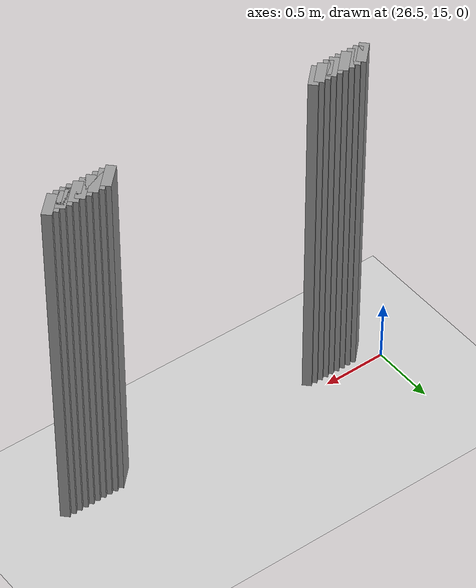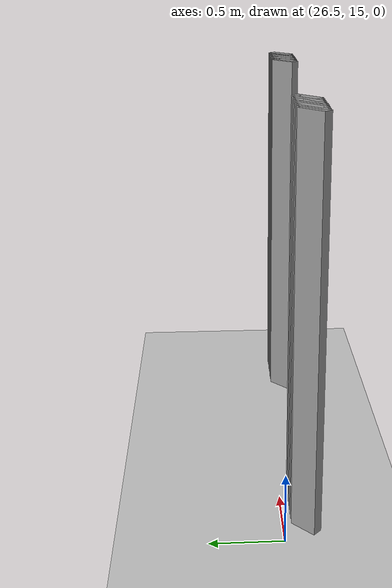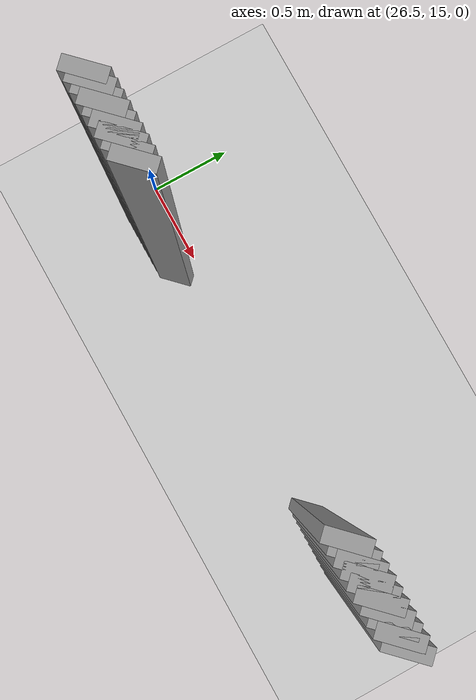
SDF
<sdf version="1.5">
 <world name="default">
  <include><uri>model://ground_plane</uri></include>
  <include><uri>model://sun</uri></include>
  <model name="grey_wall_1616">
   <static>1</static>
   <link name="link">
    <pose>26.65 14.85  1.4 0 0 -0.785398163397</pose>
    <collision name="collision"><geometry><box><size>0.0707106781187 .2  2.8</size></box></geometry></collision>
    <visual name="visual">
     <cast_shadows>0</cast_shadows>
     <geometry><box><size>0.0707106781187 .2  2.8</size></box></geometry>
     <material>
      <script>
       <uri>model://grey_wall/materials/scripts</uri>
       <uri>model://grey_wall/materials/textures</uri>
       <name>vrc/grey_wall</name>
      </script>
     </material>
    </visual>
   </link>
  </model>
  <model name="grey_wall_1617">
   <static>1</static>
   <link name="link">
    <pose>26.7 14.85  1.4 0 0 -0.785398163397</pose>
    <collision name="collision"><geometry><box><size>0.0707106781187 .2  2.8</size></box></geometry></collision>
    <visual name="visual">
     <cast_shadows>0</cast_shadows>
     <geometry><box><size>0.0707106781187 .2  2.8</size></box></geometry>
     <material>
      <script>
       <uri>model://grey_wall/materials/scripts</uri>
       <uri>model://grey_wall/materials/textures</uri>
       <name>vrc/grey_wall</name>
      </script>
     </material>
    </visual>
   </link>
  </model>
  <model name="grey_wall_1618">
   <static>1</static>
   <link name="link">
    <pose>26.75 14.85  1.4 0 0 -0.785398163397</pose>
    <collision name="collision"><geometry><box><size>0.0707106781187 .2  2.8</size></box></geometry></collision>
    <visual name="visual">
     <cast_shadows>0</cast_shadows>
     <geometry><box><size>0.0707106781187 .2  2.8</size></box></geometry>
     <material>
      <script>
       <uri>model://grey_wall/materials/scripts</uri>
       <uri>model://grey_wall/materials/textures</uri>
       <name>vrc/grey_wall</name>
      </script>
     </material>
    </visual>
   </link>
  </model>
  <model name="grey_wall_1619">
   <static>1</static>
   <link name="link">
    <pose>26.8 14.85  1.4 0 0 -0.785398163397</pose>
    <collision name="collision"><geometry><box><size>0.0707106781187 .2  2.8</size></box></geometry></collision>
    <visual name="visual">
     <cast_shadows>0</cast_shadows>
     <geometry><box><size>0.0707106781187 .2  2.8</size></box></geometry>
     <material>
      <script>
       <uri>model://grey_wall/materials/scripts</uri>
       <uri>model://grey_wall/materials/textures</uri>
       <name>vrc/grey_wall</name>
      </script>
     </material>
    </visual>
   </link>
  </model>
  <model name="grey_wall_1620">
   <static>1</static>
   <link name="link">
    <pose>26.85 14.85  1.4 0 0 -0.785398163397</pose>
    <collision name="collision"><geometry><box><size>0.0707106781187 .2  2.8</size></box></geometry></collision>
    <visual name="visual">
     <cast_shadows>0</cast_shadows>
     <geometry><box><size>0.0707106781187 .2  2.8</size></box></geometry>
     <material>
      <script>
       <uri>model://grey_wall/materials/scripts</uri>
       <uri>model://grey_wall/materials/textures</uri>
       <name>vrc/grey_wall</name>
      </script>
     </material>
    </visual>
   </link>
  </model>
  <model name="grey_wall_1621">
   <static>1</static>
   <link name="link">
    <pose>26.9 14.85  1.4 0 0 -0.785398163397</pose>
    <collision name="collision"><geometry><box><size>0.0707106781187 .2  2.8</size></box></geometry></collision>
    <visual name="visual">
     <cast_shadows>0</cast_shadows>
     <geometry><box><size>0.0707106781187 .2  2.8</size></box></geometry>
     <material>
      <script>
       <uri>model://grey_wall/materials/scripts</uri>
       <uri>model://grey_wall/materials/textures</uri>
       <name>vrc/grey_wall</name>
      </script>
     </material>
    </visual>
   </link>
  </model>
  <model name="grey_wall_1622">
   <static>1</static>
   <link name="link">
    <pose>26.95 14.85  1.4 0 0 -0.785398163397</pose>
    <collision name="collision"><geometry><box><size>0.0707106781187 .2  2.8</size></box></geometry></collision>
    <visual name="visual">
     <cast_shadows>0</cast_shadows>
     <geometry><box><size>0.0707106781187 .2  2.8</size></box></geometry>
     <material>
      <script>
       <uri>model://grey_wall/materials/scripts</uri>
       <uri>model://grey_wall/materials/textures</uri>
       <name>vrc/grey_wall</name>
      </script>
     </material>
    </visual>
   </link>
  </model>
  <model name="grey_wall_1623">
   <static>1</static>
   <link name="link">
    <pose>27.0 14.85  1.4 0 0 -0.785398163397</pose>
    <collision name="collision"><geometry><box><size>0.0707106781187 .2  2.8</size></box></geometry></collision>
    <visual name="visual">
     <cast_shadows>0</cast_shadows>
     <geometry><box><size>0.0707106781187 .2  2.8</size></box></geometry>
     <material>
      <script>
       <uri>model://grey_wall/materials/scripts</uri>
       <uri>model://grey_wall/materials/textures</uri>
       <name>vrc/grey_wall</name>
      </script>
     </material>
    </visual>
   </link>
  </model>
  <model name="grey_wall_1624">
   <static>1</static>
   <link name="link">
    <pose>27.05 14.85  1.4 0 0 -0.785398163397</pose>
    <collision name="collision"><geometry><box><size>0.0707106781187 .2  2.8</size></box></geometry></collision>
    <visual name="visual">
     <cast_shadows>0</cast_shadows>
     <geometry><box><size>0.0707106781187 .2  2.8</size></box></geometry>
     <material>
      <script>
       <uri>model://grey_wall/materials/scripts</uri>
       <uri>model://grey_wall/materials/textures</uri>
       <name>vrc/grey_wall</name>
      </script>
     </material>
    </visual>
   </link>
  </model>
  <model name="grey_wall_1625">
   <static>1</static>
   <link name="link">
    <pose>28.7 14.85  1.4 0 0 -0.785398163397</pose>
    <collision name="collision"><geometry><box><size>0.0707106781187 .2  2.8</size></box></geometry></collision>
    <visual name="visual">
     <cast_shadows>0</cast_shadows>
     <geometry><box><size>0.0707106781187 .2  2.8</size></box></geometry>
     <material>
      <script>
       <uri>model://grey_wall/materials/scripts</uri>
       <uri>model://grey_wall/materials/textures</uri>
       <name>vrc/grey_wall</name>
      </script>
     </material>
    </visual>
   </link>
  </model>
  <model name="grey_wall_1626">
   <static>1</static>
   <link name="link">
    <pose>28.75 14.85  1.4 0 0 -0.785398163397</pose>
    <collision name="collision"><geometry><box><size>0.0707106781187 .2  2.8</size></box></geometry></collision>
    <visual name="visual">
     <cast_shadows>0</cast_shadows>
     <geometry><box><size>0.0707106781187 .2  2.8</size></box></geometry>
     <material>
      <script>
       <uri>model://grey_wall/materials/scripts</uri>
       <uri>model://grey_wall/materials/textures</uri>
       <name>vrc/grey_wall</name>
      </script>
     </material>
    </visual>
   </link>
  </model>
  <model name="grey_wall_1627">
   <static>1</static>
   <link name="link">
    <pose>28.8 14.85  1.4 0 0 -0.785398163397</pose>
    <collision name="collision"><geometry><box><size>0.0707106781187 .2  2.8</size></box></geometry></collision>
    <visual name="visual">
     <cast_shadows>0</cast_shadows>
     <geometry><box><size>0.0707106781187 .2  2.8</size></box></geometry>
     <material>
      <script>
       <uri>model://grey_wall/materials/scripts</uri>
       <uri>model://grey_wall/materials/textures</uri>
       <name>vrc/grey_wall</name>
      </script>
     </material>
    </visual>
   </link>
  </model>
  <model name="grey_wall_1628">
   <static>1</static>
   <link name="link">
    <pose>28.85 14.85  1.4 0 0 -0.785398163397</pose>
    <collision name="collision"><geometry><box><size>0.0707106781187 .2  2.8</size></box></geometry></collision>
    <visual name="visual">
     <cast_shadows>0</cast_shadows>
     <geometry><box><size>0.0707106781187 .2  2.8</size></box></geometry>
     <material>
      <script>
       <uri>model://grey_wall/materials/scripts</uri>
       <uri>model://grey_wall/materials/textures</uri>
       <name>vrc/grey_wall</name>
      </script>
     </material>
    </visual>
   </link>
  </model>
  <model name="grey_wall_1629">
   <static>1</static>
   <link name="link">
    <pose>28.9 14.85  1.4 0 0 -0.785398163397</pose>
    <collision name="collision"><geometry><box><size>0.0707106781187 .2  2.8</size></box></geometry></collision>
    <visual name="visual">
     <cast_shadows>0</cast_shadows>
     <geometry><box><size>0.0707106781187 .2  2.8</size></box></geometry>
     <material>
      <script>
       <uri>model://grey_wall/materials/scripts</uri>
       <uri>model://grey_wall/materials/textures</uri>
       <name>vrc/grey_wall</name>
      </script>
     </material>
    </visual>
   </link>
  </model>
  <model name="grey_wall_1630">
   <static>1</static>
   <link name="link">
    <pose>28.95 14.85  1.4 0 0 -0.785398163397</pose>
    <collision name="collision"><geometry><box><size>0.0707106781187 .2  2.8</size></box></geometry></collision>
    <visual name="visual">
     <cast_shadows>0</cast_shadows>
     <geometry><box><size>0.0707106781187 .2  2.8</size></box></geometry>
     <material>
      <script>
       <uri>model://grey_wall/materials/scripts</uri>
       <uri>model://grey_wall/materials/textures</uri>
       <name>vrc/grey_wall</name>
      </script>
     </material>
    </visual>
   </link>
  </model>
  <model name="grey_wall_1631">
   <static>1</static>
   <link name="link">
    <pose>29.0 14.85  1.4 0 0 -0.785398163397</pose>
    <collision name="collision"><geometry><box><size>0.0707106781187 .2  2.8</size></box></geometry></collision>
    <visual name="visual">
     <cast_shadows>0</cast_shadows>
     <geometry><box><size>0.0707106781187 .2  2.8</size></box></geometry>
     <material>
      <script>
       <uri>model://grey_wall/materials/scripts</uri>
       <uri>model://grey_wall/materials/textures</uri>
       <name>vrc/grey_wall</name>
      </script>
     </material>
    </visual>
   </link>
  </model>
  <model name="grey_wall_1632">
   <static>1</static>
   <link name="link">
    <pose>29.05 14.85  1.4 0 0 -0.785398163397</pose>
    <collision name="collision"><geometry><box><size>0.0707106781187 .2  2.8</size></box></geometry></collision>
    <visual name="visual">
     <cast_shadows>0</cast_shadows>
     <geometry><box><size>0.0707106781187 .2  2.8</size></box></geometry>
     <material>
      <script>
       <uri>model://grey_wall/materials/scripts</uri>
       <uri>model://grey_wall/materials/textures</uri>
       <name>vrc/grey_wall</name>
      </script>
     </material>
    </visual>
   </link>
  </model>
  <model name="grey_wall_1633">
   <static>1</static>
   <link name="link">
    <pose>29.1 14.85  1.4 0 0 -0.785398163397</pose>
    <collision name="collision"><geometry><box><size>0.0707106781187 .2  2.8</size></box></geometry></collision>
    <visual name="visual">
     <cast_shadows>0</cast_shadows>
     <geometry><box><size>0.0707106781187 .2  2.8</size></box></geometry>
     <material>
      <script>
       <uri>model://grey_wall/materials/scripts</uri>
       <uri>model://grey_wall/materials/textures</uri>
       <name>vrc/grey_wall</name>
      </script>
     </material>
    </visual>
   </link>
  </model>
  <model name="grey_wall_1634">
   <static>1</static>
   <link name="link">
    <pose>29.15 14.85  1.4 0 0 -0.785398163397</pose>
    <collision name="collision"><geometry><box><size>0.0707106781187 .2  2.8</size></box></geometry></collision>
    <visual name="visual">
     <cast_shadows>0</cast_shadows>
     <geometry><box><size>0.0707106781187 .2  2.8</size></box></geometry>
     <material>
      <script>
       <uri>model://grey_wall/materials/scripts</uri>
       <uri>model://grey_wall/materials/textures</uri>
       <name>vrc/grey_wall</name>
      </script>
     </material>
    </visual>
   </link>
  </model>
 </world>
</sdf>
